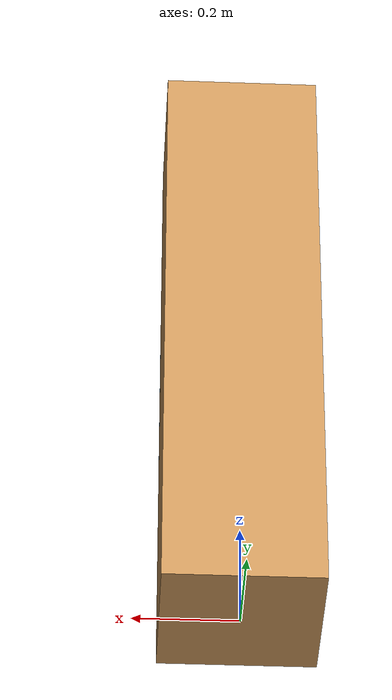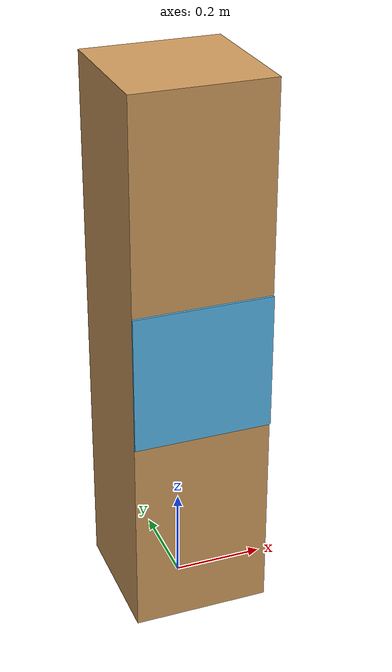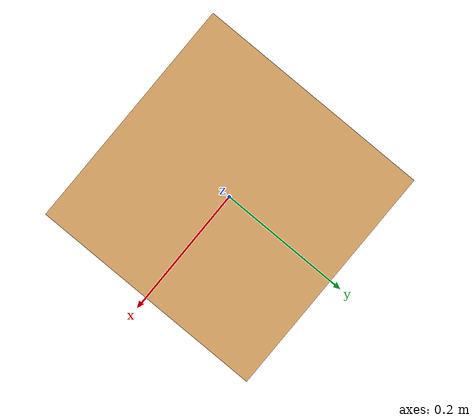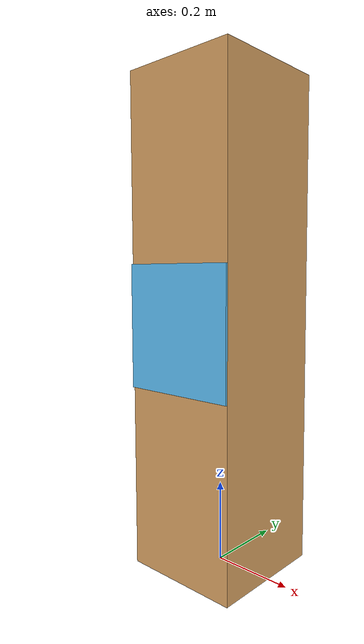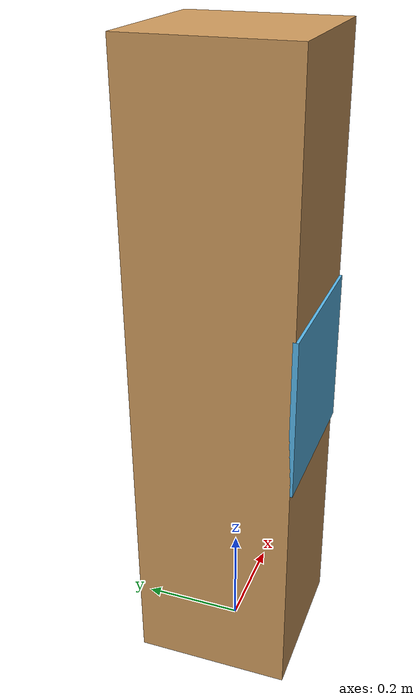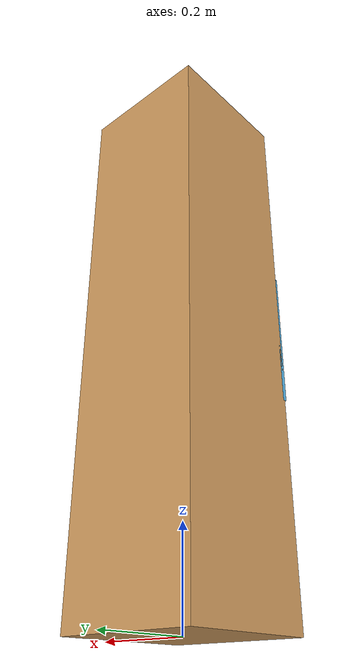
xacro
<?xml version="1.0"?>

<robot name="simulation_environment_cube11" xmlns:xacro="http://www.ros.org/wiki/xacro">

  <link name="cube_pick">
    <inertial>
      <mass value = "0.1" />
      <origin xyz="0 0 0" rpy="0 0 0"/>
      <inertia
          ixx="0.000001" ixy="0" ixz="0"
          iyy="0.000001" iyz="0"
          izz="0.000001"/>
    </inertial>
    <visual>
      <origin rpy="0 0 0" xyz="0 0 0"/>
      <geometry>
        <mesh filename="package://cooperation_landing/urdf/mesh/cube_0.3_0.3_1.2.dae" />
      </geometry>
    </visual>
    <collision>
      <origin xyz="0 0 0.6"/>
      <geometry>
        <box size="0.3 0.3 1.2"/>
      </geometry>
    </collision>
  </link>

  <joint name="apriltag_11_joint" type="fixed">
    <parent link="cube_pick"/>
    <child link="apriltag_11"/>
    <origin xyz="0 -0.15 0.6" rpy="${pi/2} 0 0" />
    <axis xyz="0 0 1"/>
  </joint>

  <link name="apriltag_11">
    <inertial>
      <mass value = "0.001" />
      <origin xyz="0 0 0" rpy="0 0 0"/>
      <inertia
          ixx="0.000001" ixy="0" ixz="0"
          iyy="0.000001" iyz="0"
          izz="0.000001"/>
    </inertial>
    <visual>
      <origin rpy="0 0 0" xyz="0 0 0"/>
      <geometry>
        <mesh filename="package://cooperation_landing/urdf/mesh/apriltag_11_0.3.dae" />
      </geometry>
    </visual>
    <collision>
      <origin rpy="0 0 0" xyz="0 0 0"/>
      <geometry>
        <box size="0.001 0.001 0.001" />
      </geometry>
    </collision>
  </link>

</robot>
